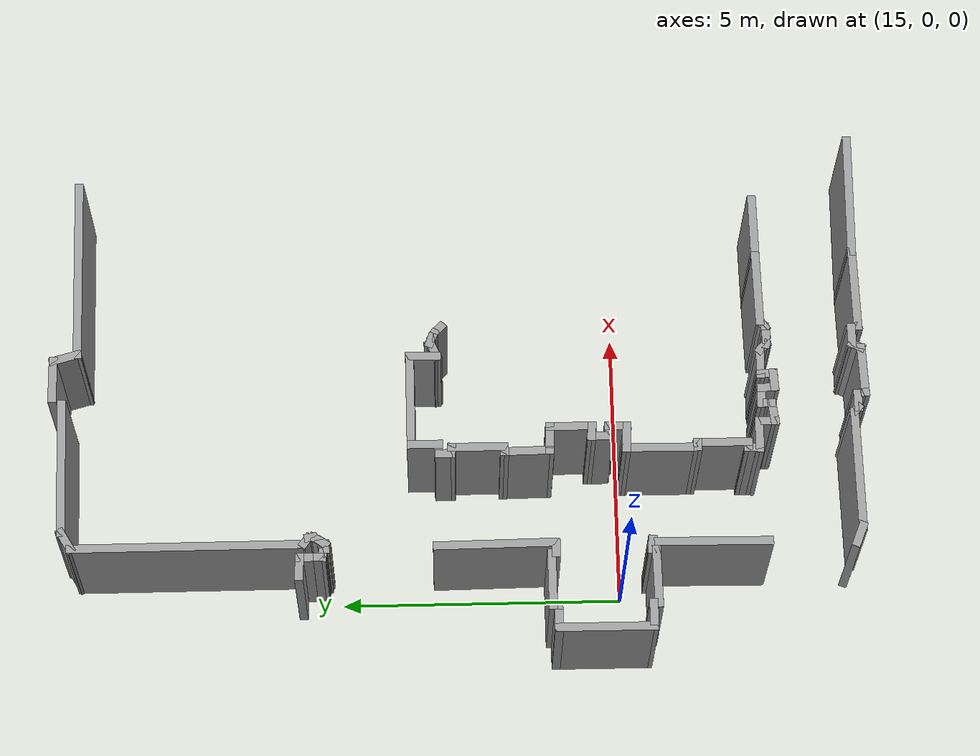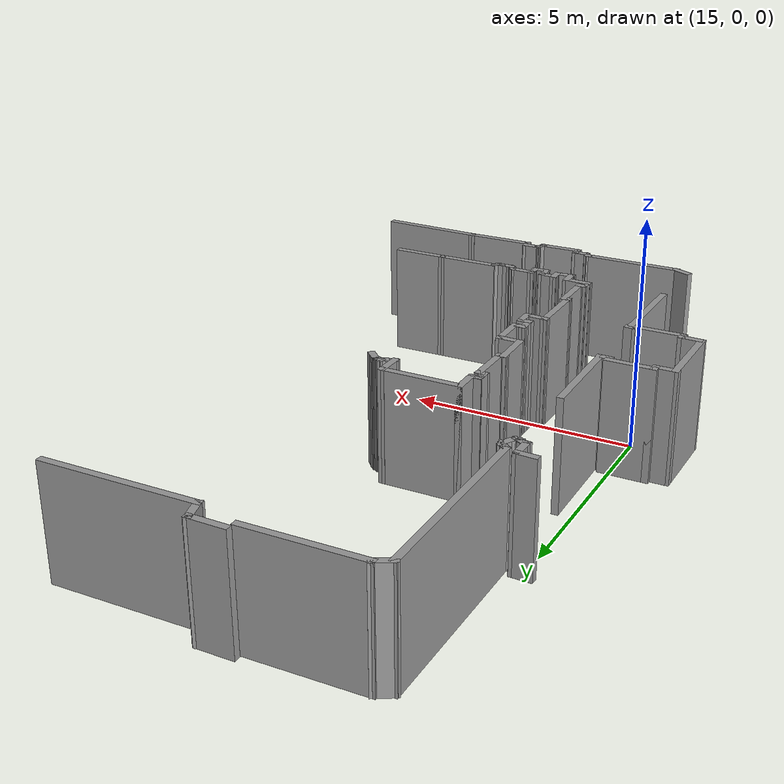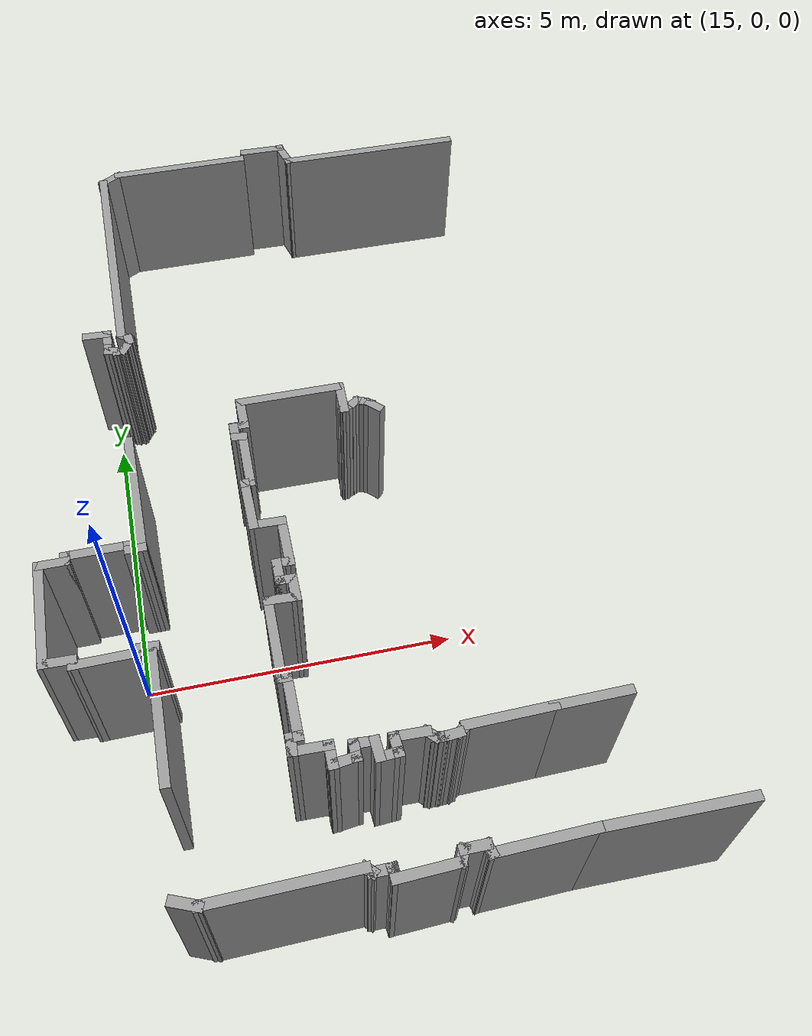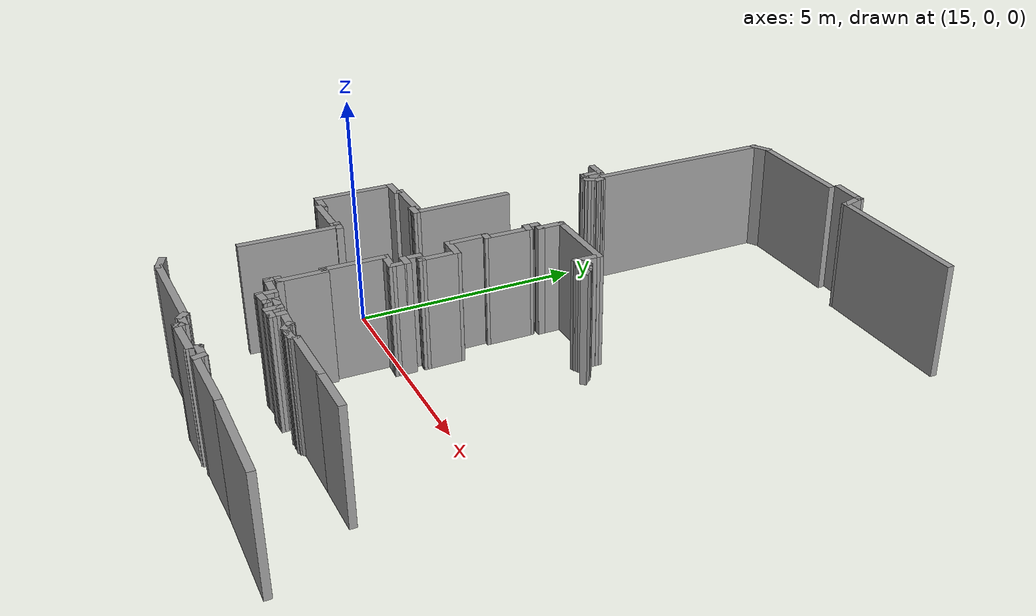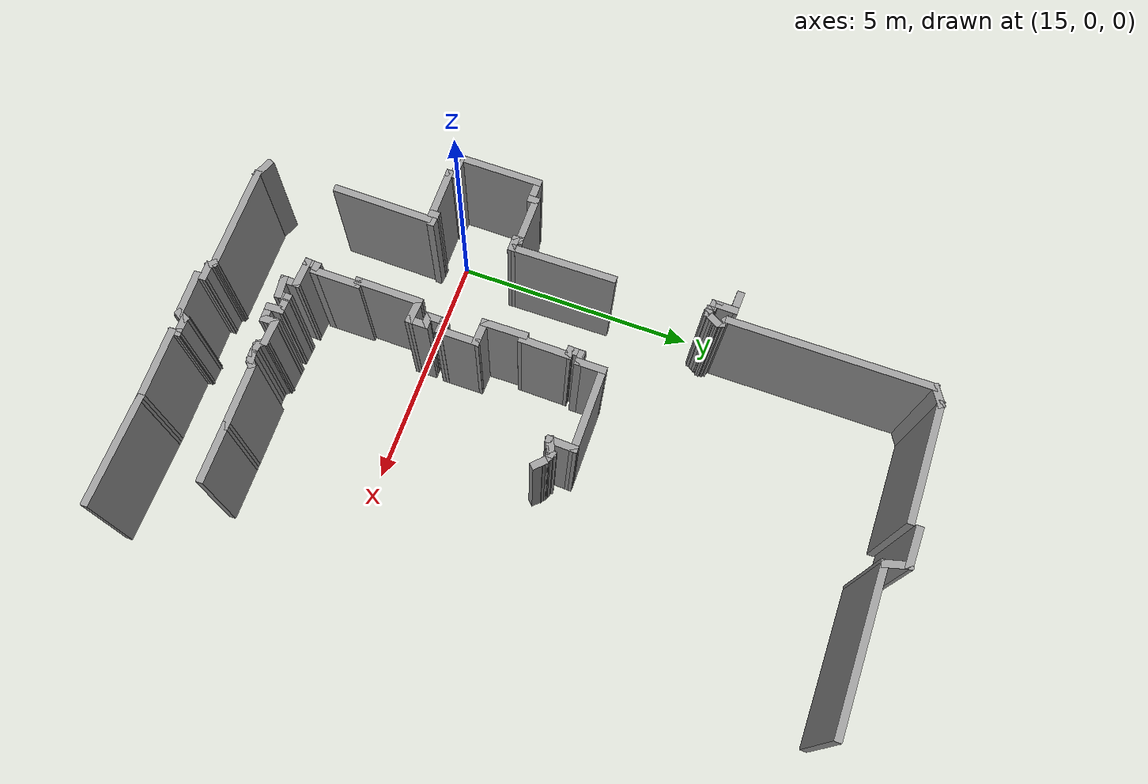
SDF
<sdf version="1.6">
 <model name="3_e">
  <pose>28.6843 2.78166 0 0 -0 0</pose>
  <link name="Wall_0">
   <collision name="Wall_0_Collision">
    <geometry><box><size>2.23163 0.15 2.5</size></box></geometry>
    <pose>0 0 1.25 0 -0 0</pose>
   </collision>
   <visual name="Wall_0_Visual">
    <pose>0 0 1.25 0 -0 0</pose>
    <geometry><box><size>2.23163 0.15 2.5</size></box></geometry>
    <material>
     <script><uri>file://media/materials/scripts/gazebo.material</uri><name>Gazebo/Grey</name></script>
     <ambient>1 1 1 1</ambient>
    </material>
   </visual>
   <pose>-13.3205 -0.529565 0 0 0 -1.55975</pose>
  </link>
  <link name="Wall_1">
   <collision name="Wall_1_Collision">
    <geometry><box><size>0.3455 0.15 2.5</size></box></geometry>
    <pose>0 0 1.25 0 -0 0</pose>
   </collision>
   <visual name="Wall_1_Visual">
    <pose>0 0 1.25 0 -0 0</pose>
    <geometry><box><size>0.3455 0.15 2.5</size></box></geometry>
    <material>
     <script><uri>file://media/materials/scripts/gazebo.material</uri><name>Gazebo/Grey</name></script>
     <ambient>1 1 1 1</ambient>
    </material>
   </visual>
   <pose>-13.4067 -1.57031 0 0 -0 3.14159</pose>
  </link>
  <link name="Wall_10">
   <collision name="Wall_10_Collision">
    <geometry><box><size>1.12757 0.15 2.5</size></box></geometry>
    <pose>0 0 1.25 0 -0 0</pose>
   </collision>
   <visual name="Wall_10_Visual">
    <pose>0 0 1.25 0 -0 0</pose>
    <geometry><box><size>1.12757 0.15 2.5</size></box></geometry>
    <material>
     <script><uri>file://media/materials/scripts/gazebo.material</uri><name>Gazebo/Grey</name></script>
     <ambient>1 1 1 1</ambient>
    </material>
   </visual>
   <pose>-13.9645 -3.3328 0 0 -0 0.011764</pose>
  </link>
  <link name="Wall_11">
   <collision name="Wall_11_Collision">
    <geometry><box><size>0.219 0.15 2.5</size></box></geometry>
    <pose>0 0 1.25 0 -0 0</pose>
   </collision>
   <visual name="Wall_11_Visual">
    <pose>0 0 1.25 0 -0 0</pose>
    <geometry><box><size>0.219 0.15 2.5</size></box></geometry>
    <material>
     <script><uri>file://media/materials/scripts/gazebo.material</uri><name>Gazebo/Grey</name></script>
     <ambient>1 1 1 1</ambient>
    </material>
   </visual>
   <pose>-13.4758 -3.29255 0 0 -0 1.5708</pose>
  </link>
  <link name="Wall_12">
   <collision name="Wall_12_Collision">
    <geometry><box><size>0.334359 0.15 2.5</size></box></geometry>
    <pose>0 0 1.25 0 -0 0</pose>
   </collision>
   <visual name="Wall_12_Visual">
    <pose>0 0 1.25 0 -0 0</pose>
    <geometry><box><size>0.334359 0.15 2.5</size></box></geometry>
    <material>
     <script><uri>file://media/materials/scripts/gazebo.material</uri><name>Gazebo/Grey</name></script>
     <ambient>1 1 1 1</ambient>
    </material>
   </visual>
   <pose>-13.3838 -3.2638 0 0 0 -0.062419</pose>
  </link>
  <link name="Wall_156">
   <collision name="Wall_156_Collision">
    <geometry><box><size>3.37008 0.15 2.5</size></box></geometry>
    <pose>0 0 1.25 0 -0 0</pose>
   </collision>
   <visual name="Wall_156_Visual">
    <pose>0 0 1.25 0 -0 0</pose>
    <geometry><box><size>3.37008 0.15 2.5</size></box></geometry>
    <material>
     <script><uri>file://media/materials/scripts/gazebo.material</uri><name>Gazebo/Grey</name></script>
     <ambient>1 1 1 1</ambient>
    </material>
   </visual>
   <pose>-8.01375 6.87279 0 0 -0 0</pose>
  </link>
  <link name="Wall_159">
   <collision name="Wall_159_Collision">
    <geometry><box><size>2.54203 0.15 2.5</size></box></geometry>
    <pose>0 0 1.25 0 -0 0</pose>
   </collision>
   <visual name="Wall_159_Visual">
    <pose>0 0 1.25 0 -0 0</pose>
    <geometry><box><size>2.54203 0.15 2.5</size></box></geometry>
    <material>
     <script><uri>file://media/materials/scripts/gazebo.material</uri><name>Gazebo/Grey</name></script>
     <ambient>1 1 1 1</ambient>
    </material>
   </visual>
   <pose>-11.7512 7.13154 0 0 -0 0.004808</pose>
  </link>
  <link name="Wall_16">
   <collision name="Wall_16_Collision">
    <geometry><box><size>2.10098 0.15 2.5</size></box></geometry>
    <pose>0 0 1.25 0 -0 0</pose>
   </collision>
   <visual name="Wall_16_Visual">
    <pose>0 0 1.25 0 -0 0</pose>
    <geometry><box><size>2.10098 0.15 2.5</size></box></geometry>
    <material>
     <script><uri>file://media/materials/scripts/gazebo.material</uri><name>Gazebo/Grey</name></script>
     <ambient>1 1 1 1</ambient>
    </material>
   </visual>
   <pose>-13.3491 -4.3434 0 0 0 -1.58242</pose>
  </link>
  <link name="Wall_162">
   <collision name="Wall_162_Collision">
    <geometry><box><size>0.851594 0.15 2.5</size></box></geometry>
    <pose>0 0 1.25 0 -0 0</pose>
   </collision>
   <visual name="Wall_162_Visual">
    <pose>0 0 1.25 0 -0 0</pose>
    <geometry><box><size>0.851594 0.15 2.5</size></box></geometry>
    <material>
     <script><uri>file://media/materials/scripts/gazebo.material</uri><name>Gazebo/Grey</name></script>
     <ambient>1 1 1 1</ambient>
    </material>
   </visual>
   <pose>-10.0895 7.30404 0 0 0 -0.016392</pose>
  </link>
  <link name="Wall_163">
   <collision name="Wall_163_Collision">
    <geometry><box><size>0.590767 0.15 2.5</size></box></geometry>
    <pose>0 0 1.25 0 -0 0</pose>
   </collision>
   <visual name="Wall_163_Visual">
    <pose>0 0 1.25 0 -0 0</pose>
    <geometry><box><size>0.590767 0.15 2.5</size></box></geometry>
    <material>
     <script><uri>file://media/materials/scripts/gazebo.material</uri><name>Gazebo/Grey</name></script>
     <ambient>1 1 1 1</ambient>
    </material>
   </visual>
   <pose>-9.68125 7.08554 0 0 0 -1.30683</pose>
  </link>
  <link name="Wall_165">
   <collision name="Wall_165_Collision">
    <geometry><box><size>0.5 0.15 2.5</size></box></geometry>
    <pose>0 0 1.25 0 -0 0</pose>
   </collision>
   <visual name="Wall_165_Visual">
    <pose>0 0 1.25 0 -0 0</pose>
    <geometry><box><size>0.5 0.15 2.5</size></box></geometry>
    <material>
     <script><uri>file://media/materials/scripts/gazebo.material</uri><name>Gazebo/Grey</name></script>
     <ambient>1 1 1 1</ambient>
    </material>
   </visual>
   <pose>-13.0988 7.03829 0 0 0 -2.61799</pose>
  </link>
  <link name="Wall_166">
   <collision name="Wall_166_Collision">
    <geometry><box><size>4.19923 0.15 2.5</size></box></geometry>
    <pose>0 0 1.25 0 -0 0</pose>
   </collision>
   <visual name="Wall_166_Visual">
    <pose>0 0 1.25 0 -0 0</pose>
    <geometry><box><size>4.19923 0.15 2.5</size></box></geometry>
    <material>
     <script><uri>file://media/materials/scripts/gazebo.material</uri><name>Gazebo/Grey</name></script>
     <ambient>1 1 1 1</ambient>
    </material>
   </visual>
   <pose>-13.2511 4.92618 0 0 0 -1.57115</pose>
  </link>
  <link name="Wall_168">
   <collision name="Wall_168_Collision">
    <geometry><box><size>0.28225 0.15 2.5</size></box></geometry>
    <pose>0 0 1.25 0 -0 0</pose>
   </collision>
   <visual name="Wall_168_Visual">
    <pose>0 0 1.25 0 -0 0</pose>
    <geometry><box><size>0.28225 0.15 2.5</size></box></geometry>
    <material>
     <script><uri>file://media/materials/scripts/gazebo.material</uri><name>Gazebo/Grey</name></script>
     <ambient>1 1 1 1</ambient>
    </material>
   </visual>
   <pose>-13.1892 2.81404 0 0 0 -0.643501</pose>
  </link>
  <link name="Wall_169">
   <collision name="Wall_169_Collision">
    <geometry><box><size>0.230445 0.15 2.5</size></box></geometry>
    <pose>0 0 1.25 0 -0 0</pose>
   </collision>
   <visual name="Wall_169_Visual">
    <pose>0 0 1.25 0 -0 0</pose>
    <geometry><box><size>0.230445 0.15 2.5</size></box></geometry>
    <material>
     <script><uri>file://media/materials/scripts/gazebo.material</uri><name>Gazebo/Grey</name></script>
     <ambient>1 1 1 1</ambient>
    </material>
   </visual>
   <pose>-13.1297 2.73469 0 0 0 -1.40565</pose>
  </link>
  <link name="Wall_170">
   <collision name="Wall_170_Collision">
    <geometry><box><size>0.28616 0.15 2.5</size></box></geometry>
    <pose>0 0 1.25 0 -0 0</pose>
   </collision>
   <visual name="Wall_170_Visual">
    <pose>0 0 1.25 0 -0 0</pose>
    <geometry><box><size>0.28616 0.15 2.5</size></box></geometry>
    <material>
     <script><uri>file://media/materials/scripts/gazebo.material</uri><name>Gazebo/Grey</name></script>
     <ambient>1 1 1 1</ambient>
    </material>
   </visual>
   <pose>-13.1561 2.63551 0 0 0 -2.07789</pose>
  </link>
  <link name="Wall_171">
   <collision name="Wall_171_Collision">
    <geometry><box><size>0.263766 0.15 2.5</size></box></geometry>
    <pose>0 0 1.25 0 -0 0</pose>
   </collision>
   <visual name="Wall_171_Visual">
    <pose>0 0 1.25 0 -0 0</pose>
    <geometry><box><size>0.263766 0.15 2.5</size></box></geometry>
    <material>
     <script><uri>file://media/materials/scripts/gazebo.material</uri><name>Gazebo/Grey</name></script>
     <ambient>1 1 1 1</ambient>
    </material>
   </visual>
   <pose>-13.2223 2.52971 0 0 0 -2.19105</pose>
  </link>
  <link name="Wall_172">
   <collision name="Wall_172_Collision">
    <geometry><box><size>0.242575 0.15 2.5</size></box></geometry>
    <pose>0 0 1.25 0 -0 0</pose>
   </collision>
   <visual name="Wall_172_Visual">
    <pose>0 0 1.25 0 -0 0</pose>
    <geometry><box><size>0.242575 0.15 2.5</size></box></geometry>
    <material>
     <script><uri>file://media/materials/scripts/gazebo.material</uri><name>Gazebo/Grey</name></script>
     <ambient>1 1 1 1</ambient>
    </material>
   </visual>
   <pose>-13.3016 2.48342 0 0 -0 3.14159</pose>
  </link>
  <link name="Wall_173">
   <collision name="Wall_173_Collision">
    <geometry><box><size>0.227114 0.15 2.5</size></box></geometry>
    <pose>0 0 1.25 0 -0 0</pose>
   </collision>
   <visual name="Wall_173_Visual">
    <pose>0 0 1.25 0 -0 0</pose>
    <geometry><box><size>0.227114 0.15 2.5</size></box></geometry>
    <material>
     <script><uri>file://media/materials/scripts/gazebo.material</uri><name>Gazebo/Grey</name></script>
     <ambient>1 1 1 1</ambient>
    </material>
   </visual>
   <pose>-13.381 2.50325 0 0 -0 2.60117</pose>
  </link>
  <link name="Wall_174">
   <collision name="Wall_174_Collision">
    <geometry><box><size>0.230445 0.15 2.5</size></box></geometry>
    <pose>0 0 1.25 0 -0 0</pose>
   </collision>
   <visual name="Wall_174_Visual">
    <pose>0 0 1.25 0 -0 0</pose>
    <geometry><box><size>0.230445 0.15 2.5</size></box></geometry>
    <material>
     <script><uri>file://media/materials/scripts/gazebo.material</uri><name>Gazebo/Grey</name></script>
     <ambient>1 1 1 1</ambient>
    </material>
   </visual>
   <pose>-13.4537 2.52971 0 0 -0 2.97644</pose>
  </link>
  <link name="Wall_175">
   <collision name="Wall_175_Collision">
    <geometry><box><size>0.22935 0.15 2.5</size></box></geometry>
    <pose>0 0 1.25 0 -0 0</pose>
   </collision>
   <visual name="Wall_175_Visual">
    <pose>0 0 1.25 0 -0 0</pose>
    <geometry><box><size>0.22935 0.15 2.5</size></box></geometry>
    <material>
     <script><uri>file://media/materials/scripts/gazebo.material</uri><name>Gazebo/Grey</name></script>
     <ambient>1 1 1 1</ambient>
    </material>
   </visual>
   <pose>-13.4934 2.57599 0 0 -0 1.5708</pose>
  </link>
  <link name="Wall_176">
   <collision name="Wall_176_Collision">
    <geometry><box><size>0.4674 0.15 2.5</size></box></geometry>
    <pose>0 0 1.25 0 -0 0</pose>
   </collision>
   <visual name="Wall_176_Visual">
    <pose>0 0 1.25 0 -0 0</pose>
    <geometry><box><size>0.4674 0.15 2.5</size></box></geometry>
    <material>
     <script><uri>file://media/materials/scripts/gazebo.material</uri><name>Gazebo/Grey</name></script>
     <ambient>1 1 1 1</ambient>
    </material>
   </visual>
   <pose>-13.4934 2.77437 0 0 -0 1.5708</pose>
  </link>
  <link name="Wall_177">
   <collision name="Wall_177_Collision">
    <geometry><box><size>0.494104 0.15 2.5</size></box></geometry>
    <pose>0 0 1.25 0 -0 0</pose>
   </collision>
   <visual name="Wall_177_Visual">
    <pose>0 0 1.25 0 -0 0</pose>
    <geometry><box><size>0.494104 0.15 2.5</size></box></geometry>
    <material>
     <script><uri>file://media/materials/scripts/gazebo.material</uri><name>Gazebo/Grey</name></script>
     <ambient>1 1 1 1</ambient>
    </material>
   </visual>
   <pose>-13.6653 2.93968 0 0 -0 3.10315</pose>
  </link>
  <link name="Wall_18">
   <collision name="Wall_18_Collision">
    <geometry><box><size>0.317296 0.15 2.5</size></box></geometry>
    <pose>0 0 1.25 0 -0 0</pose>
   </collision>
   <visual name="Wall_18_Visual">
    <pose>0 0 1.25 0 -0 0</pose>
    <geometry><box><size>0.317296 0.15 2.5</size></box></geometry>
    <material>
     <script><uri>file://media/materials/scripts/gazebo.material</uri><name>Gazebo/Grey</name></script>
     <ambient>1 1 1 1</ambient>
    </material>
   </visual>
   <pose>-11.5341 0.452297 0 0 -0 0</pose>
  </link>
  <link name="Wall_19">
   <collision name="Wall_19_Collision">
    <geometry><box><size>0.63668 0.15 2.5</size></box></geometry>
    <pose>0 0 1.25 0 -0 0</pose>
   </collision>
   <visual name="Wall_19_Visual">
    <pose>0 0 1.25 0 -0 0</pose>
    <geometry><box><size>0.63668 0.15 2.5</size></box></geometry>
    <material>
     <script><uri>file://media/materials/scripts/gazebo.material</uri><name>Gazebo/Grey</name></script>
     <ambient>1 1 1 1</ambient>
    </material>
   </visual>
   <pose>-11.4505 0.695637 0 0 -0 1.5708</pose>
  </link>
  <link name="Wall_2">
   <collision name="Wall_2_Collision">
    <geometry><box><size>0.2305 0.15 2.5</size></box></geometry>
    <pose>0 0 1.25 0 -0 0</pose>
   </collision>
   <visual name="Wall_2_Visual">
    <pose>0 0 1.25 0 -0 0</pose>
    <geometry><box><size>0.2305 0.15 2.5</size></box></geometry>
    <material>
     <script><uri>file://media/materials/scripts/gazebo.material</uri><name>Gazebo/Grey</name></script>
     <ambient>1 1 1 1</ambient>
    </material>
   </visual>
   <pose>-13.5045 -1.53007 0 0 -0 1.5708</pose>
  </link>
  <link name="Wall_20">
   <collision name="Wall_20_Collision">
    <geometry><box><size>1.82296 0.15 2.5</size></box></geometry>
    <pose>0 0 1.25 0 -0 0</pose>
   </collision>
   <visual name="Wall_20_Visual">
    <pose>0 0 1.25 0 -0 0</pose>
    <geometry><box><size>1.82296 0.15 2.5</size></box></geometry>
    <material>
     <script><uri>file://media/materials/scripts/gazebo.material</uri><name>Gazebo/Grey</name></script>
     <ambient>1 1 1 1</ambient>
    </material>
   </visual>
   <pose>-10.614 0.938977 0 0 -0 0</pose>
  </link>
  <link name="Wall_21">
   <collision name="Wall_21_Collision">
    <geometry><box><size>0.636918 0.15 2.5</size></box></geometry>
    <pose>0 0 1.25 0 -0 0</pose>
   </collision>
   <visual name="Wall_21_Visual">
    <pose>0 0 1.25 0 -0 0</pose>
    <geometry><box><size>0.636918 0.15 2.5</size></box></geometry>
    <material>
     <script><uri>file://media/materials/scripts/gazebo.material</uri><name>Gazebo/Grey</name></script>
     <ambient>1 1 1 1</ambient>
    </material>
   </visual>
   <pose>-9.7851 0.695637 0 0 0 -1.60204</pose>
  </link>
  <link name="Wall_22">
   <collision name="Wall_22_Collision">
    <geometry><box><size>0.333768 0.15 2.5</size></box></geometry>
    <pose>0 0 1.25 0 -0 0</pose>
   </collision>
   <visual name="Wall_22_Visual">
    <pose>0 0 1.25 0 -0 0</pose>
    <geometry><box><size>0.333768 0.15 2.5</size></box></geometry>
    <material>
     <script><uri>file://media/materials/scripts/gazebo.material</uri><name>Gazebo/Grey</name></script>
     <ambient>1 1 1 1</ambient>
    </material>
   </visual>
   <pose>-9.70905 0.490319 0 0 -0 0.426628</pose>
  </link>
  <link name="Wall_23">
   <collision name="Wall_23_Collision">
    <geometry><box><size>0.238681 0.15 2.5</size></box></geometry>
    <pose>0 0 1.25 0 -0 0</pose>
   </collision>
   <visual name="Wall_23_Visual">
    <pose>0 0 1.25 0 -0 0</pose>
    <geometry><box><size>0.238681 0.15 2.5</size></box></geometry>
    <material>
     <script><uri>file://media/materials/scripts/gazebo.material</uri><name>Gazebo/Grey</name></script>
     <ambient>1 1 1 1</ambient>
    </material>
   </visual>
   <pose>-9.58738 0.551153 0 0 -0 0.54042</pose>
  </link>
  <link name="Wall_24">
   <collision name="Wall_24_Collision">
    <geometry><box><size>0.279944 0.15 2.5</size></box></geometry>
    <pose>0 0 1.25 0 -0 0</pose>
   </collision>
   <visual name="Wall_24_Visual">
    <pose>0 0 1.25 0 -0 0</pose>
    <geometry><box><size>0.279944 0.15 2.5</size></box></geometry>
    <material>
     <script><uri>file://media/materials/scripts/gazebo.material</uri><name>Gazebo/Grey</name></script>
     <ambient>1 1 1 1</ambient>
    </material>
   </visual>
   <pose>-9.48852 0.551153 0 0 0 -0.358771</pose>
  </link>
  <link name="Wall_25">
   <collision name="Wall_25_Collision">
    <geometry><box><size>0.238681 0.15 2.5</size></box></geometry>
    <pose>0 0 1.25 0 -0 0</pose>
   </collision>
   <visual name="Wall_25_Visual">
    <pose>0 0 1.25 0 -0 0</pose>
    <geometry><box><size>0.238681 0.15 2.5</size></box></geometry>
    <material>
     <script><uri>file://media/materials/scripts/gazebo.material</uri><name>Gazebo/Grey</name></script>
     <ambient>1 1 1 1</ambient>
    </material>
   </visual>
   <pose>-9.38967 0.505527 0 0 0 -0.54042</pose>
  </link>
  <link name="Wall_26">
   <collision name="Wall_26_Collision">
    <geometry><box><size>0.322067 0.15 2.5</size></box></geometry>
    <pose>0 0 1.25 0 -0 0</pose>
   </collision>
   <visual name="Wall_26_Visual">
    <pose>0 0 1.25 0 -0 0</pose>
    <geometry><box><size>0.322067 0.15 2.5</size></box></geometry>
    <material>
     <script><uri>file://media/materials/scripts/gazebo.material</uri><name>Gazebo/Grey</name></script>
     <ambient>1 1 1 1</ambient>
    </material>
   </visual>
   <pose>-9.29081 0.421879 0 0 0 -0.785398</pose>
  </link>
  <link name="Wall_3">
   <collision name="Wall_3_Collision">
    <geometry><box><size>1.1045 0.15 2.5</size></box></geometry>
    <pose>0 0 1.25 0 -0 0</pose>
   </collision>
   <visual name="Wall_3_Visual">
    <pose>0 0 1.25 0 -0 0</pose>
    <geometry><box><size>1.1045 0.15 2.5</size></box></geometry>
    <material>
     <script><uri>file://media/materials/scripts/gazebo.material</uri><name>Gazebo/Grey</name></script>
     <ambient>1 1 1 1</ambient>
    </material>
   </visual>
   <pose>-13.9817 -1.48981 0 0 -0 3.14159</pose>
  </link>
  <link name="Wall_37">
   <collision name="Wall_37_Collision">
    <geometry><box><size>1.41521 0.15 2.5</size></box></geometry>
    <pose>0 0 1.25 0 -0 0</pose>
   </collision>
   <visual name="Wall_37_Visual">
    <pose>0 0 1.25 0 -0 0</pose>
    <geometry><box><size>1.41521 0.15 2.5</size></box></geometry>
    <material>
     <script><uri>file://media/materials/scripts/gazebo.material</uri><name>Gazebo/Grey</name></script>
     <ambient>1 1 1 1</ambient>
    </material>
   </visual>
   <pose>-8.62136 -5.33566 0 0 -0 0.01818</pose>
  </link>
  <link name="Wall_38">
   <collision name="Wall_38_Collision">
    <geometry><box><size>1.24274 0.15 2.5</size></box></geometry>
    <pose>0 0 1.25 0 -0 0</pose>
   </collision>
   <visual name="Wall_38_Visual">
    <pose>0 0 1.25 0 -0 0</pose>
    <geometry><box><size>1.24274 0.15 2.5</size></box></geometry>
    <material>
     <script><uri>file://media/materials/scripts/gazebo.material</uri><name>Gazebo/Grey</name></script>
     <ambient>1 1 1 1</ambient>
    </material>
   </visual>
   <pose>-7.44261 -5.31841 0 0 -0 0.010526</pose>
  </link>
  <link name="Wall_4">
   <collision name="Wall_4_Collision">
    <geometry><box><size>0.242 0.15 2.5</size></box></geometry>
    <pose>0 0 1.25 0 -0 0</pose>
   </collision>
   <visual name="Wall_4_Visual">
    <pose>0 0 1.25 0 -0 0</pose>
    <geometry><box><size>0.242 0.15 2.5</size></box></geometry>
    <material>
     <script><uri>file://media/materials/scripts/gazebo.material</uri><name>Gazebo/Grey</name></script>
     <ambient>1 1 1 1</ambient>
    </material>
   </visual>
   <pose>-14.459 -1.53581 0 0 0 -1.5708</pose>
  </link>
  <link name="Wall_41">
   <collision name="Wall_41_Collision">
    <geometry><box><size>0.357 0.15 2.5</size></box></geometry>
    <pose>0 0 1.25 0 -0 0</pose>
   </collision>
   <visual name="Wall_41_Visual">
    <pose>0 0 1.25 0 -0 0</pose>
    <geometry><box><size>0.357 0.15 2.5</size></box></geometry>
    <material>
     <script><uri>file://media/materials/scripts/gazebo.material</uri><name>Gazebo/Grey</name></script>
     <ambient>1 1 1 1</ambient>
    </material>
   </visual>
   <pose>-11.6277 0.336744 0 0 0 -1.5708</pose>
  </link>
  <link name="Wall_42">
   <collision name="Wall_42_Collision">
    <geometry><box><size>0.265574 0.15 2.5</size></box></geometry>
    <pose>0 0 1.25 0 -0 0</pose>
   </collision>
   <visual name="Wall_42_Visual">
    <pose>0 0 1.25 0 -0 0</pose>
    <geometry><box><size>0.265574 0.15 2.5</size></box></geometry>
    <material>
     <script><uri>file://media/materials/scripts/gazebo.material</uri><name>Gazebo/Grey</name></script>
     <ambient>1 1 1 1</ambient>
    </material>
   </visual>
   <pose>-11.5702 0.227494 0 0 0 -0.099669</pose>
  </link>
  <link name="Wall_43">
   <collision name="Wall_43_Collision">
    <geometry><box><size>1.08157 0.15 2.5</size></box></geometry>
    <pose>0 0 1.25 0 -0 0</pose>
   </collision>
   <visual name="Wall_43_Visual">
    <pose>0 0 1.25 0 -0 0</pose>
    <geometry><box><size>1.08157 0.15 2.5</size></box></geometry>
    <material>
     <script><uri>file://media/materials/scripts/gazebo.material</uri><name>Gazebo/Grey</name></script>
     <ambient>1 1 1 1</ambient>
    </material>
   </visual>
   <pose>-11.5184 -0.244006 0 0 0 -1.58314</pose>
  </link>
  <link name="Wall_44">
   <collision name="Wall_44_Collision">
    <geometry><box><size>0.242 0.15 2.5</size></box></geometry>
    <pose>0 0 1.25 0 -0 0</pose>
   </collision>
   <visual name="Wall_44_Visual">
    <pose>0 0 1.25 0 -0 0</pose>
    <geometry><box><size>0.242 0.15 2.5</size></box></geometry>
    <material>
     <script><uri>file://media/materials/scripts/gazebo.material</uri><name>Gazebo/Grey</name></script>
     <ambient>1 1 1 1</ambient>
    </material>
   </visual>
   <pose>-11.5702 -0.709757 0 0 -0 3.14159</pose>
  </link>
  <link name="Wall_45">
   <collision name="Wall_45_Collision">
    <geometry><box><size>0.955082 0.15 2.5</size></box></geometry>
    <pose>0 0 1.25 0 -0 0</pose>
   </collision>
   <visual name="Wall_45_Visual">
    <pose>0 0 1.25 0 -0 0</pose>
    <geometry><box><size>0.955082 0.15 2.5</size></box></geometry>
    <material>
     <script><uri>file://media/materials/scripts/gazebo.material</uri><name>Gazebo/Grey</name></script>
     <ambient>1 1 1 1</ambient>
    </material>
   </visual>
   <pose>-11.6104 -1.11226 0 0 0 -1.55651</pose>
  </link>
  <link name="Wall_46">
   <collision name="Wall_46_Collision">
    <geometry><box><size>0.587151 0.15 2.5</size></box></geometry>
    <pose>0 0 1.25 0 -0 0</pose>
   </collision>
   <visual name="Wall_46_Visual">
    <pose>0 0 1.25 0 -0 0</pose>
    <geometry><box><size>0.587151 0.15 2.5</size></box></geometry>
    <material>
     <script><uri>file://media/materials/scripts/gazebo.material</uri><name>Gazebo/Grey</name></script>
     <ambient>1 1 1 1</ambient>
    </material>
   </visual>
   <pose>-11.3862 -1.52051 0 0 0 -0.02631</pose>
  </link>
  <link name="Wall_47">
   <collision name="Wall_47_Collision">
    <geometry><box><size>0.8975 0.15 2.5</size></box></geometry>
    <pose>0 0 1.25 0 -0 0</pose>
   </collision>
   <visual name="Wall_47_Visual">
    <pose>0 0 1.25 0 -0 0</pose>
    <geometry><box><size>0.8975 0.15 2.5</size></box></geometry>
    <material>
     <script><uri>file://media/materials/scripts/gazebo.material</uri><name>Gazebo/Grey</name></script>
     <ambient>1 1 1 1</ambient>
    </material>
   </visual>
   <pose>-11.1677 -1.90001 0 0 0 -1.5708</pose>
  </link>
  <link name="Wall_48">
   <collision name="Wall_48_Collision">
    <geometry><box><size>0.345838 0.15 2.5</size></box></geometry>
    <pose>0 0 1.25 0 -0 0</pose>
   </collision>
   <visual name="Wall_48_Visual">
    <pose>0 0 1.25 0 -0 0</pose>
    <geometry><box><size>0.345838 0.15 2.5</size></box></geometry>
    <material>
     <script><uri>file://media/materials/scripts/gazebo.material</uri><name>Gazebo/Grey</name></script>
     <ambient>1 1 1 1</ambient>
    </material>
   </visual>
   <pose>-11.2654 -2.26801 0 0 -0 3.08284</pose>
  </link>
  <link name="Wall_49">
   <collision name="Wall_49_Collision">
    <geometry><box><size>0.4605 0.15 2.5</size></box></geometry>
    <pose>0 0 1.25 0 -0 0</pose>
   </collision>
   <visual name="Wall_49_Visual">
    <pose>0 0 1.25 0 -0 0</pose>
    <geometry><box><size>0.4605 0.15 2.5</size></box></geometry>
    <material>
     <script><uri>file://media/materials/scripts/gazebo.material</uri><name>Gazebo/Grey</name></script>
     <ambient>1 1 1 1</ambient>
    </material>
   </visual>
   <pose>-11.3632 -2.41751 0 0 0 -1.5708</pose>
  </link>
  <link name="Wall_5">
   <collision name="Wall_5_Collision">
    <geometry><box><size>0.553157 0.15 2.5</size></box></geometry>
    <pose>0 0 1.25 0 -0 0</pose>
   </collision>
   <visual name="Wall_5_Visual">
    <pose>0 0 1.25 0 -0 0</pose>
    <geometry><box><size>0.553157 0.15 2.5</size></box></geometry>
    <material>
     <script><uri>file://media/materials/scripts/gazebo.material</uri><name>Gazebo/Grey</name></script>
     <ambient>1 1 1 1</ambient>
    </material>
   </visual>
   <pose>-14.6602 -1.58181 0 0 -0 3.14159</pose>
  </link>
  <link name="Wall_50">
   <collision name="Wall_50_Collision">
    <geometry><box><size>0.334 0.15 2.5</size></box></geometry>
    <pose>0 0 1.25 0 -0 0</pose>
   </collision>
   <visual name="Wall_50_Visual">
    <pose>0 0 1.25 0 -0 0</pose>
    <geometry><box><size>0.334 0.15 2.5</size></box></geometry>
    <material>
     <script><uri>file://media/materials/scripts/gazebo.material</uri><name>Gazebo/Grey</name></script>
     <ambient>1 1 1 1</ambient>
    </material>
   </visual>
   <pose>-11.2712 -2.57276 0 0 -0 0</pose>
  </link>
  <link name="Wall_51">
   <collision name="Wall_51_Collision">
    <geometry><box><size>0.472 0.15 2.5</size></box></geometry>
    <pose>0 0 1.25 0 -0 0</pose>
   </collision>
   <visual name="Wall_51_Visual">
    <pose>0 0 1.25 0 -0 0</pose>
    <geometry><box><size>0.472 0.15 2.5</size></box></geometry>
    <material>
     <script><uri>file://media/materials/scripts/gazebo.material</uri><name>Gazebo/Grey</name></script>
     <ambient>1 1 1 1</ambient>
    </material>
   </visual>
   <pose>-11.1792 -2.73376 0 0 0 -1.5708</pose>
  </link>
  <link name="Wall_52">
   <collision name="Wall_52_Collision">
    <geometry><box><size>0.564638 0.15 2.5</size></box></geometry>
    <pose>0 0 1.25 0 -0 0</pose>
   </collision>
   <visual name="Wall_52_Visual">
    <pose>0 0 1.25 0 -0 0</pose>
    <geometry><box><size>0.564638 0.15 2.5</size></box></geometry>
    <material>
     <script><uri>file://media/materials/scripts/gazebo.material</uri><name>Gazebo/Grey</name></script>
     <ambient>1 1 1 1</ambient>
    </material>
   </visual>
   <pose>-11.3862 -2.88326 0 0 -0 3.08609</pose>
  </link>
  <link name="Wall_54">
   <collision name="Wall_54_Collision">
    <geometry><box><size>1.41434 0.15 2.5</size></box></geometry>
    <pose>0 0 1.25 0 -0 0</pose>
   </collision>
   <visual name="Wall_54_Visual">
    <pose>0 0 1.25 0 -0 0</pose>
    <geometry><box><size>1.41434 0.15 2.5</size></box></geometry>
    <material>
     <script><uri>file://media/materials/scripts/gazebo.material</uri><name>Gazebo/Grey</name></script>
     <ambient>1 1 1 1</ambient>
    </material>
   </visual>
   <pose>-11.5984 -3.50393 0 0 0 -1.57908</pose>
  </link>
  <link name="Wall_55">
   <collision name="Wall_55_Collision">
    <geometry><box><size>0.22935 0.15 2.5</size></box></geometry>
    <pose>0 0 1.25 0 -0 0</pose>
   </collision>
   <visual name="Wall_55_Visual">
    <pose>0 0 1.25 0 -0 0</pose>
    <geometry><box><size>0.22935 0.15 2.5</size></box></geometry>
    <material>
     <script><uri>file://media/materials/scripts/gazebo.material</uri><name>Gazebo/Grey</name></script>
     <ambient>1 1 1 1</ambient>
    </material>
   </visual>
   <pose>-11.564 -4.1361 0 0 -0 0</pose>
  </link>
  <link name="Wall_56">
   <collision name="Wall_56_Collision">
    <geometry><box><size>1.0494 0.15 2.5</size></box></geometry>
    <pose>0 0 1.25 0 -0 0</pose>
   </collision>
   <visual name="Wall_56_Visual">
    <pose>0 0 1.25 0 -0 0</pose>
    <geometry><box><size>1.0494 0.15 2.5</size></box></geometry>
    <material>
     <script><uri>file://media/materials/scripts/gazebo.material</uri><name>Gazebo/Grey</name></script>
     <ambient>1 1 1 1</ambient>
    </material>
   </visual>
   <pose>-11.5243 -4.58575 0 0 0 -1.5708</pose>
  </link>
  <link name="Wall_57">
   <collision name="Wall_57_Collision">
    <geometry><box><size>0.2558 0.15 2.5</size></box></geometry>
    <pose>0 0 1.25 0 -0 0</pose>
   </collision>
   <visual name="Wall_57_Visual">
    <pose>0 0 1.25 0 -0 0</pose>
    <geometry><box><size>0.2558 0.15 2.5</size></box></geometry>
    <material>
     <script><uri>file://media/materials/scripts/gazebo.material</uri><name>Gazebo/Grey</name></script>
     <ambient>1 1 1 1</ambient>
    </material>
   </visual>
   <pose>-11.5772 -5.0354 0 0 -0 3.14159</pose>
  </link>
  <link name="Wall_58">
   <collision name="Wall_58_Collision">
    <geometry><box><size>0.348815 0.15 2.5</size></box></geometry>
    <pose>0 0 1.25 0 -0 0</pose>
   </collision>
   <visual name="Wall_58_Visual">
    <pose>0 0 1.25 0 -0 0</pose>
    <geometry><box><size>0.348815 0.15 2.5</size></box></geometry>
    <material>
     <script><uri>file://media/materials/scripts/gazebo.material</uri><name>Gazebo/Grey</name></script>
     <ambient>1 1 1 1</ambient>
    </material>
   </visual>
   <pose>-11.6367 -5.13458 0 0 0 -1.63736</pose>
  </link>
  <link name="Wall_59">
   <collision name="Wall_59_Collision">
    <geometry><box><size>0.652724 0.15 2.5</size></box></geometry>
    <pose>0 0 1.25 0 -0 0</pose>
   </collision>
   <visual name="Wall_59_Visual">
    <pose>0 0 1.25 0 -0 0</pose>
    <geometry><box><size>0.652724 0.15 2.5</size></box></geometry>
    <material>
     <script><uri>file://media/materials/scripts/gazebo.material</uri><name>Gazebo/Grey</name></script>
     <ambient>1 1 1 1</ambient>
    </material>
   </visual>
   <pose>-11.392 -5.24038 0 0 0 -0.02631</pose>
  </link>
  <link name="Wall_60">
   <collision name="Wall_60_Collision">
    <geometry><box><size>0.427725 0.15 2.5</size></box></geometry>
    <pose>0 0 1.25 0 -0 0</pose>
   </collision>
   <visual name="Wall_60_Visual">
    <pose>0 0 1.25 0 -0 0</pose>
    <geometry><box><size>0.427725 0.15 2.5</size></box></geometry>
    <material>
     <script><uri>file://media/materials/scripts/gazebo.material</uri><name>Gazebo/Grey</name></script>
     <ambient>1 1 1 1</ambient>
    </material>
   </visual>
   <pose>-11.1408 -5.38586 0 0 0 -1.5708</pose>
  </link>
  <link name="Wall_61">
   <collision name="Wall_61_Collision">
    <geometry><box><size>0.482997 0.15 2.5</size></box></geometry>
    <pose>0 0 1.25 0 -0 0</pose>
   </collision>
   <visual name="Wall_61_Visual">
    <pose>0 0 1.25 0 -0 0</pose>
    <geometry><box><size>0.482997 0.15 2.5</size></box></geometry>
    <material>
     <script><uri>file://media/materials/scripts/gazebo.material</uri><name>Gazebo/Grey</name></script>
     <ambient>1 1 1 1</ambient>
    </material>
   </visual>
   <pose>-10.9754 -5.50488 0 0 -0 0.119429</pose>
  </link>
  <link name="Wall_62">
   <collision name="Wall_62_Collision">
    <geometry><box><size>0.33515 0.15 2.5</size></box></geometry>
    <pose>0 0 1.25 0 -0 0</pose>
   </collision>
   <visual name="Wall_62_Visual">
    <pose>0 0 1.25 0 -0 0</pose>
    <geometry><box><size>0.33515 0.15 2.5</size></box></geometry>
    <material>
     <script><uri>file://media/materials/scripts/gazebo.material</uri><name>Gazebo/Grey</name></script>
     <ambient>1 1 1 1</ambient>
    </material>
   </visual>
   <pose>-10.8101 -5.39247 0 0 -0 1.5708</pose>
  </link>
  <link name="Wall_63">
   <collision name="Wall_63_Collision">
    <geometry><box><size>0.44125 0.15 2.5</size></box></geometry>
    <pose>0 0 1.25 0 -0 0</pose>
   </collision>
   <visual name="Wall_63_Visual">
    <pose>0 0 1.25 0 -0 0</pose>
    <geometry><box><size>0.44125 0.15 2.5</size></box></geometry>
    <material>
     <script><uri>file://media/materials/scripts/gazebo.material</uri><name>Gazebo/Grey</name></script>
     <ambient>1 1 1 1</ambient>
    </material>
   </visual>
   <pose>-10.6647 -5.30651 0 0 0 -0.045423</pose>
  </link>
  <link name="Wall_64">
   <collision name="Wall_64_Collision">
    <geometry><box><size>0.388417 0.15 2.5</size></box></geometry>
    <pose>0 0 1.25 0 -0 0</pose>
   </collision>
   <visual name="Wall_64_Visual">
    <pose>0 0 1.25 0 -0 0</pose>
    <geometry><box><size>0.388417 0.15 2.5</size></box></geometry>
    <material>
     <script><uri>file://media/materials/scripts/gazebo.material</uri><name>Gazebo/Grey</name></script>
     <ambient>1 1 1 1</ambient>
    </material>
   </visual>
   <pose>-10.5126 -5.43215 0 0 0 -1.5153</pose>
  </link>
  <link name="Wall_65">
   <collision name="Wall_65_Collision">
    <geometry><box><size>0.41483 0.15 2.5</size></box></geometry>
    <pose>0 0 1.25 0 -0 0</pose>
   </collision>
   <visual name="Wall_65_Visual">
    <pose>0 0 1.25 0 -0 0</pose>
    <geometry><box><size>0.41483 0.15 2.5</size></box></geometry>
    <material>
     <script><uri>file://media/materials/scripts/gazebo.material</uri><name>Gazebo/Grey</name></script>
     <ambient>1 1 1 1</ambient>
    </material>
   </visual>
   <pose>-10.3737 -5.54456 0 0 -0 0.049958</pose>
  </link>
  <link name="Wall_66">
   <collision name="Wall_66_Collision">
    <geometry><box><size>0.375214 0.15 2.5</size></box></geometry>
    <pose>0 0 1.25 0 -0 0</pose>
   </collision>
   <visual name="Wall_66_Visual">
    <pose>0 0 1.25 0 -0 0</pose>
    <geometry><box><size>0.375214 0.15 2.5</size></box></geometry>
    <material>
     <script><uri>file://media/materials/scripts/gazebo.material</uri><name>Gazebo/Grey</name></script>
     <ambient>1 1 1 1</ambient>
    </material>
   </visual>
   <pose>-10.2481 -5.42553 0 0 -0 1.62955</pose>
  </link>
  <link name="Wall_67">
   <collision name="Wall_67_Collision">
    <geometry><box><size>0.599844 0.15 2.5</size></box></geometry>
    <pose>0 0 1.25 0 -0 0</pose>
   </collision>
   <visual name="Wall_67_Visual">
    <pose>0 0 1.25 0 -0 0</pose>
    <geometry><box><size>0.599844 0.15 2.5</size></box></geometry>
    <material>
     <script><uri>file://media/materials/scripts/gazebo.material</uri><name>Gazebo/Grey</name></script>
     <ambient>1 1 1 1</ambient>
    </material>
   </visual>
   <pose>-10.0299 -5.31973 0 0 0 -0.029403</pose>
  </link>
  <link name="Wall_68">
   <collision name="Wall_68_Collision">
    <geometry><box><size>0.299624 0.15 2.5</size></box></geometry>
    <pose>0 0 1.25 0 -0 0</pose>
   </collision>
   <visual name="Wall_68_Visual">
    <pose>0 0 1.25 0 -0 0</pose>
    <geometry><box><size>0.299624 0.15 2.5</size></box></geometry>
    <material>
     <script><uri>file://media/materials/scripts/gazebo.material</uri><name>Gazebo/Grey</name></script>
     <ambient>1 1 1 1</ambient>
    </material>
   </visual>
   <pose>-9.75214 -5.37925 0 0 0 -0.785398</pose>
  </link>
  <link name="Wall_69">
   <collision name="Wall_69_Collision">
    <geometry><box><size>0.243515 0.15 2.5</size></box></geometry>
    <pose>0 0 1.25 0 -0 0</pose>
   </collision>
   <visual name="Wall_69_Visual">
    <pose>0 0 1.25 0 -0 0</pose>
    <geometry><box><size>0.243515 0.15 2.5</size></box></geometry>
    <material>
     <script><uri>file://media/materials/scripts/gazebo.material</uri><name>Gazebo/Grey</name></script>
     <ambient>1 1 1 1</ambient>
    </material>
   </visual>
   <pose>-9.65295 -5.43876 0 0 0 -0.141897</pose>
  </link>
  <link name="Wall_7">
   <collision name="Wall_7_Collision">
    <geometry><box><size>1.80324 0.15 2.5</size></box></geometry>
    <pose>0 0 1.25 0 -0 0</pose>
   </collision>
   <visual name="Wall_7_Visual">
    <pose>0 0 1.25 0 -0 0</pose>
    <geometry><box><size>1.80324 0.15 2.5</size></box></geometry>
    <material>
     <script><uri>file://media/materials/scripts/gazebo.material</uri><name>Gazebo/Grey</name></script>
     <ambient>1 1 1 1</ambient>
    </material>
   </visual>
   <pose>-14.8644 -2.40843 0 0 0 -1.57428</pose>
  </link>
  <link name="Wall_70">
   <collision name="Wall_70_Collision">
    <geometry><box><size>0.2558 0.15 2.5</size></box></geometry>
    <pose>0 0 1.25 0 -0 0</pose>
   </collision>
   <visual name="Wall_70_Visual">
    <pose>0 0 1.25 0 -0 0</pose>
    <geometry><box><size>0.2558 0.15 2.5</size></box></geometry>
    <material>
     <script><uri>file://media/materials/scripts/gazebo.material</uri><name>Gazebo/Grey</name></script>
     <ambient>1 1 1 1</ambient>
    </material>
   </visual>
   <pose>-9.55376 -5.44537 0 0 -0 0</pose>
  </link>
  <link name="Wall_71">
   <collision name="Wall_71_Collision">
    <geometry><box><size>0.28291 0.15 2.5</size></box></geometry>
    <pose>0 0 1.25 0 -0 0</pose>
   </collision>
   <visual name="Wall_71_Visual">
    <pose>0 0 1.25 0 -0 0</pose>
    <geometry><box><size>0.28291 0.15 2.5</size></box></geometry>
    <material>
     <script><uri>file://media/materials/scripts/gazebo.material</uri><name>Gazebo/Grey</name></script>
     <ambient>1 1 1 1</ambient>
    </material>
   </visual>
   <pose>-9.43474 -5.43876 0 0 -0 0.099669</pose>
  </link>
  <link name="Wall_72">
   <collision name="Wall_72_Collision">
    <geometry><box><size>0.245367 0.15 2.5</size></box></geometry>
    <pose>0 0 1.25 0 -0 0</pose>
   </collision>
   <visual name="Wall_72_Visual">
    <pose>0 0 1.25 0 -0 0</pose>
    <geometry><box><size>0.245367 0.15 2.5</size></box></geometry>
    <material>
     <script><uri>file://media/materials/scripts/gazebo.material</uri><name>Gazebo/Grey</name></script>
     <ambient>1 1 1 1</ambient>
    </material>
   </visual>
   <pose>-9.32894 -5.4057 0 0 -0 0.588003</pose>
  </link>
  <link name="Wall_74">
   <collision name="Wall_74_Collision">
    <geometry><box><size>0.477607 0.15 2.5</size></box></geometry>
    <pose>0 0 1.25 0 -0 0</pose>
   </collision>
   <visual name="Wall_74_Visual">
    <pose>0 0 1.25 0 -0 0</pose>
    <geometry><box><size>0.477607 0.15 2.5</size></box></geometry>
    <material>
     <script><uri>file://media/materials/scripts/gazebo.material</uri><name>Gazebo/Grey</name></script>
     <ambient>1 1 1 1</ambient>
    </material>
   </visual>
   <pose>-13.2766 -6.91733 0 0 0 -0.380506</pose>
  </link>
  <link name="Wall_75">
   <collision name="Wall_75_Collision">
    <geometry><box><size>2.27944 0.15 2.5</size></box></geometry>
    <pose>0 0 1.25 0 -0 0</pose>
   </collision>
   <visual name="Wall_75_Visual">
    <pose>0 0 1.25 0 -0 0</pose>
    <geometry><box><size>2.27944 0.15 2.5</size></box></geometry>
    <material>
     <script><uri>file://media/materials/scripts/gazebo.material</uri><name>Gazebo/Grey</name></script>
     <ambient>1 1 1 1</ambient>
    </material>
   </visual>
   <pose>-12.0599 -6.96295 0 0 -0 0.014285</pose>
  </link>
  <link name="Wall_76">
   <collision name="Wall_76_Collision">
    <geometry><box><size>0.257542 0.15 2.5</size></box></geometry>
    <pose>0 0 1.25 0 -0 0</pose>
   </collision>
   <visual name="Wall_76_Visual">
    <pose>0 0 1.25 0 -0 0</pose>
    <geometry><box><size>0.257542 0.15 2.5</size></box></geometry>
    <material>
     <script><uri>file://media/materials/scripts/gazebo.material</uri><name>Gazebo/Grey</name></script>
     <ambient>1 1 1 1</ambient>
    </material>
   </visual>
   <pose>-10.9573 -6.98577 0 0 0 -0.785398</pose>
  </link>
  <link name="Wall_77">
   <collision name="Wall_77_Collision">
    <geometry><box><size>0.408549 0.15 2.5</size></box></geometry>
    <pose>0 0 1.25 0 -0 0</pose>
   </collision>
   <visual name="Wall_77_Visual">
    <pose>0 0 1.25 0 -0 0</pose>
    <geometry><box><size>0.408549 0.15 2.5</size></box></geometry>
    <material>
     <script><uri>file://media/materials/scripts/gazebo.material</uri><name>Gazebo/Grey</name></script>
     <ambient>1 1 1 1</ambient>
    </material>
   </visual>
   <pose>-10.79 -7.02379 0 0 -0 0</pose>
  </link>
  <link name="Wall_78">
   <collision name="Wall_78_Collision">
    <geometry><box><size>0.287721 0.15 2.5</size></box></geometry>
    <pose>0 0 1.25 0 -0 0</pose>
   </collision>
   <visual name="Wall_78_Visual">
    <pose>0 0 1.25 0 -0 0</pose>
    <geometry><box><size>0.287721 0.15 2.5</size></box></geometry>
    <material>
     <script><uri>file://media/materials/scripts/gazebo.material</uri><name>Gazebo/Grey</name></script>
     <ambient>1 1 1 1</ambient>
    </material>
   </visual>
   <pose>-10.6531 -7.09223 0 0 0 -1.46014</pose>
  </link>
  <link name="Wall_79">
   <collision name="Wall_79_Collision">
    <geometry><box><size>1.00223 0.15 2.5</size></box></geometry>
    <pose>0 0 1.25 0 -0 0</pose>
   </collision>
   <visual name="Wall_79_Visual">
    <pose>0 0 1.25 0 -0 0</pose>
    <geometry><box><size>1.00223 0.15 2.5</size></box></geometry>
    <material>
     <script><uri>file://media/materials/scripts/gazebo.material</uri><name>Gazebo/Grey</name></script>
     <ambient>1 1 1 1</ambient>
    </material>
   </visual>
   <pose>-10.2197 -7.14546 0 0 -0 0.035699</pose>
  </link>
  <link name="Wall_8">
   <collision name="Wall_8_Collision">
    <geometry><box><size>0.56416 0.15 2.5</size></box></geometry>
    <pose>0 0 1.25 0 -0 0</pose>
   </collision>
   <visual name="Wall_8_Visual">
    <pose>0 0 1.25 0 -0 0</pose>
    <geometry><box><size>0.56416 0.15 2.5</size></box></geometry>
    <material>
     <script><uri>file://media/materials/scripts/gazebo.material</uri><name>Gazebo/Grey</name></script>
     <ambient>1 1 1 1</ambient>
    </material>
   </visual>
   <pose>-14.6603 -3.2408 0 0 0 -0.027771</pose>
  </link>
  <link name="Wall_80">
   <collision name="Wall_80_Collision">
    <geometry><box><size>0.320039 0.15 2.5</size></box></geometry>
    <pose>0 0 1.25 0 -0 0</pose>
   </collision>
   <visual name="Wall_80_Visual">
    <pose>0 0 1.25 0 -0 0</pose>
    <geometry><box><size>0.320039 0.15 2.5</size></box></geometry>
    <material>
     <script><uri>file://media/materials/scripts/gazebo.material</uri><name>Gazebo/Grey</name></script>
     <ambient>1 1 1 1</ambient>
    </material>
   </visual>
   <pose>-9.75578 -7.0542 0 0 -0 1.10715</pose>
  </link>
  <link name="Wall_81">
   <collision name="Wall_81_Collision">
    <geometry><box><size>0.454555 0.15 2.5</size></box></geometry>
    <pose>0 0 1.25 0 -0 0</pose>
   </collision>
   <visual name="Wall_81_Visual">
    <pose>0 0 1.25 0 -0 0</pose>
    <geometry><box><size>0.454555 0.15 2.5</size></box></geometry>
    <material>
     <script><uri>file://media/materials/scripts/gazebo.material</uri><name>Gazebo/Grey</name></script>
     <ambient>1 1 1 1</ambient>
    </material>
   </visual>
   <pose>-9.56568 -6.97816 0 0 -0 0</pose>
  </link>
  <link name="Wall_82">
   <collision name="Wall_82_Collision">
    <geometry><box><size>0.275415 0.15 2.5</size></box></geometry>
    <pose>0 0 1.25 0 -0 0</pose>
   </collision>
   <visual name="Wall_82_Visual">
    <pose>0 0 1.25 0 -0 0</pose>
    <geometry><box><size>0.275415 0.15 2.5</size></box></geometry>
    <material>
     <script><uri>file://media/materials/scripts/gazebo.material</uri><name>Gazebo/Grey</name></script>
     <ambient>1 1 1 1</ambient>
    </material>
   </visual>
   <pose>-9.39838 -7.039 0 0 0 -1.32582</pose>
  </link>
  <link name="Wall_83">
   <collision name="Wall_83_Collision">
    <geometry><box><size>1.57995 0.15 2.5</size></box></geometry>
    <pose>0 0 1.25 0 -0 0</pose>
   </collision>
   <visual name="Wall_83_Visual">
    <pose>0 0 1.25 0 -0 0</pose>
    <geometry><box><size>1.57995 0.15 2.5</size></box></geometry>
    <material>
     <script><uri>file://media/materials/scripts/gazebo.material</uri><name>Gazebo/Grey</name></script>
     <ambient>1 1 1 1</ambient>
    </material>
   </visual>
   <pose>-8.66836 -7.08462 0 0 -0 0.021273</pose>
  </link>
  <link name="Wall_85">
   <collision name="Wall_85_Collision">
    <geometry><box><size>2.32506 0.15 2.5</size></box></geometry>
    <pose>0 0 1.25 0 -0 0</pose>
   </collision>
   <visual name="Wall_85_Visual">
    <pose>0 0 1.25 0 -0 0</pose>
    <geometry><box><size>2.32506 0.15 2.5</size></box></geometry>
    <material>
     <script><uri>file://media/materials/scripts/gazebo.material</uri><name>Gazebo/Grey</name></script>
     <ambient>1 1 1 1</ambient>
    </material>
   </visual>
   <pose>-6.86612 -7.08462 0 0 0 -0.013985</pose>
  </link>
  <link name="Wall_9">
   <collision name="Wall_9_Collision">
    <geometry><box><size>0.242716 0.15 2.5</size></box></geometry>
    <pose>0 0 1.25 0 -0 0</pose>
   </collision>
   <visual name="Wall_9_Visual">
    <pose>0 0 1.25 0 -0 0</pose>
    <geometry><box><size>0.242716 0.15 2.5</size></box></geometry>
    <material>
     <script><uri>file://media/materials/scripts/gazebo.material</uri><name>Gazebo/Grey</name></script>
     <ambient>1 1 1 1</ambient>
    </material>
   </visual>
   <pose>-14.4533 -3.29255 0 0 0 -1.5708</pose>
  </link>
  <static>1</static>
 </model>
</sdf>
